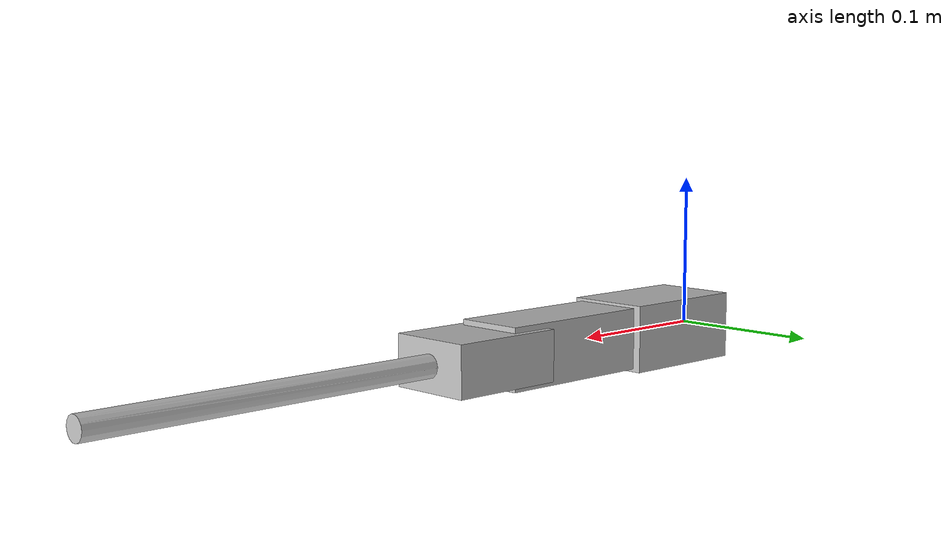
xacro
<?xml version="1.0"?>
<robot name="example_quadruped_leg" xmlns:xacro="http://www.ros.org/wiki/xacro">
  <xacro:include filename="$(find example_quadruped_description)/urdf/common.urdf.xacro" />
  <xacro:include filename="$(find example_quadruped_description)/urdf/leg.urdf.xacro" />

  <link name="base_link" />
  <xacro:example_quadruped_leg name="leg" parent="base_link"><origin /></xacro:example_quadruped_leg>
</robot>

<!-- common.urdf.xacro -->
<robot xmlns:xacro="http://www.ros.org/wiki/xacro">
  <material name="example_quadruped_material">
    <color rgba="0.75 0.75 0.75 1" />
  </material>
</robot>

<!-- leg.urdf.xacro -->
<robot xmlns:xacro="http://www.ros.org/wiki/xacro">
  <xacro:macro name="flexipod_joint_transmission" params="name">
    <transmission name="${name}_transmission">
      <type>transmission_interface/SimpleTransmission</type>
      <joint name="${name}_joint">
        <hardwareInterface>EffortJointInterface</hardwareInterface>
      </joint>
      <actuator name="${name}_motor">
        <mechanicalReduction>1</mechanicalReduction>
        <hardwareInterface>EffortJointInterface</hardwareInterface>
      </actuator>
    </transmission>
  </xacro:macro>

  <xacro:macro name="example_quadruped_leg" params="name parent *origin">
    <link name="${name}_coxa_link">
      <visual>
        <geometry><mesh filename="package://example_quadruped_description/meshes/coxa_link.stl" /></geometry>
        <origin rpy="${-pi / 2} 0 ${pi / 2}" />
        <material name="example_quadruped_material" />
      </visual>
      <collision>
        <geometry><mesh filename="package://example_quadruped_description/meshes/coxa_link.stl" /></geometry>
        <origin rpy="${-pi / 2} 0 ${pi / 2}" />
      </collision>
      <inertial>
        <origin xyz="0.0028255 0.016487 -0.038239" />
        <mass value="0.054025" />
        <inertia ixx="4.2638E-05" ixy="-1.8883E-07" ixz="-4.2377E-06" iyy="5.3271E-05" iyz="2.555E-06" izz="2.8624E-05" />
      </inertial>
    </link>

    <link name="${name}_femur_link">
      <visual>
        <geometry><mesh filename="package://example_quadruped_description/meshes/femur_link.stl" /></geometry>
        <origin rpy="0 0 ${-pi / 2}" />
        <material name="example_quadruped_material" />
      </visual>
      <collision>
        <geometry><mesh filename="package://example_quadruped_description/meshes/femur_link.stl" /></geometry>
        <origin rpy="0 0 ${-pi / 2}" />
      </collision>
      <inertial>
        <origin xyz="4.1633E-17 0.0545 -0.0002317" />
        <mass value="0.18426" />
        <inertia ixx="0.00033345" ixy="-6.5254E-08" ixz="-1.5302E-19" iyy="4.8055E-05" iyz="-2.3378E-19" izz="0.0003165" />
      </inertial>
    </link>

    <link name="${name}_tibia_link">
      <visual>
        <geometry><mesh filename="package://example_quadruped_description/meshes/tibia_link.stl" /></geometry>
        <origin rpy="${-pi / 2} ${-pi / 2} 0" />
        <material name="example_quadruped_material" />
      </visual>
      <collision>
        <geometry><mesh filename="package://example_quadruped_description/meshes/tibia_link.stl" /></geometry>
        <origin rpy="${-pi / 2} ${-pi / 2} 0" />
      </collision>
      <inertial>
        <origin xyz="-0.001867 0.094612 7.7874E-06" />
        <mass value="0.08176" />
        <inertia ixx="0.0009073" ixy="1.4442E-05" ixz="1.1866E-09" iyy="2.5535E-05" iyz="9.4278E-08" izz="0.00092384" />
      </inertial>
    </link>

    <link name="${name}_foot_link" />

    <joint name="${name}_coxa_joint" type="revolute">
      <parent link="${parent}" />
      <child link="${name}_coxa_link" />

      <xacro:insert_block name="origin" />
      <axis xyz="0 0 1" />

      <limit lower="-1.8326" upper="1.8326" effort="3.1" velocity="7" />
    </joint>

    <joint name="${name}_femur_joint" type="revolute">
      <parent link="${name}_coxa_link" />
      <child link="${name}_femur_link" />

      <origin xyz="0.066 0 0" rpy="${-pi / 2} 0 0" />
      <axis xyz="0 0 1" />

      <limit lower="-1.9199" upper="1.9199" effort="10" velocity="5.5" />
    </joint>

    <joint name="${name}_tibia_joint" type="revolute">
      <parent link="${name}_femur_link" />
      <child link="${name}_tibia_link" />

      <origin xyz="0.109 0 0" rpy="0 0 0" />
      <axis xyz="0 0 1" />

      <limit lower="-1.9199" upper="1.9199" effort="10" velocity="5.5" />
    </joint>

    <joint name="${name}_foot_joint" type="fixed">
      <parent link="${name}_tibia_link" />
      <child link="${name}_foot_link" />

      <origin xyz="0.324 0 0" rpy="0 ${pi / 2} 0" />
    </joint>

    <xacro:flexipod_joint_transmission name="${name}_coxa" />
    <xacro:flexipod_joint_transmission name="${name}_femur" />
    <xacro:flexipod_joint_transmission name="${name}_tibia" />
  </xacro:macro>
</robot>
